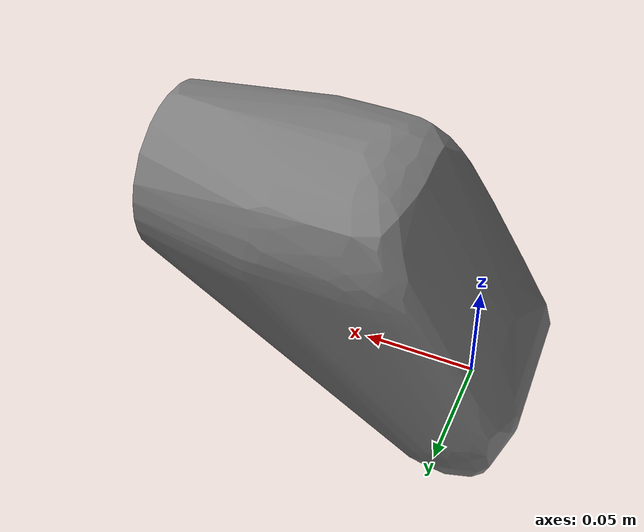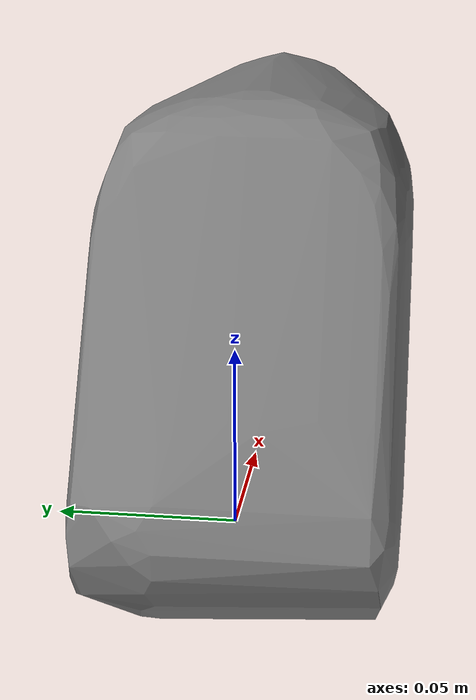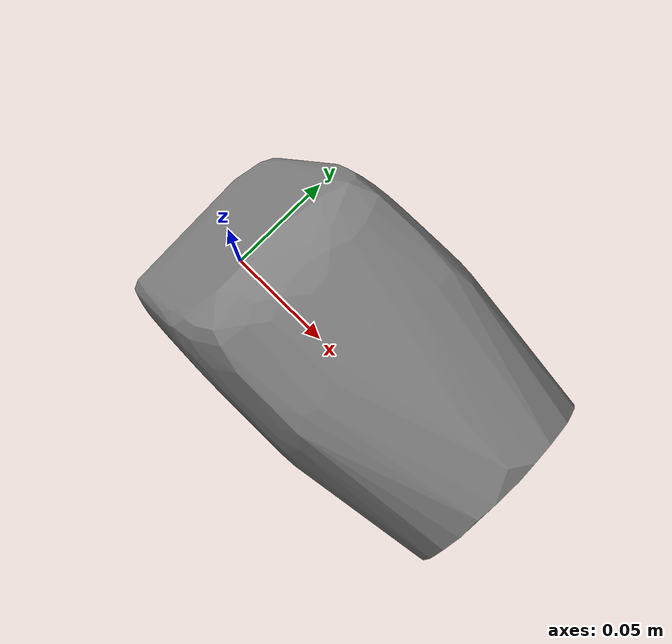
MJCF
<mujoco model="arm_link_el0_coll">
  <default>
    <default class="visual">
      <geom group="2" type="mesh" contype="0" conaffinity="0"/>
    </default>
    <default class="collision">
      <geom group="3" type="mesh"/>
    </default>
  </default>
  <asset>
    <mesh file="arm_link_el0_coll.obj"/>
    <mesh file="arm_link_el0_coll_collision_0.obj"/>
  </asset>
  <worldbody>
    <body name="arm_link_el0_coll">
      <geom mesh="arm_link_el0_coll" class="visual"/>
      <geom mesh="arm_link_el0_coll_collision_0" rgba="0.7222567355278037 0.3747929702359698 0.5686872430537686 1" class="collision"/>
    </body>
  </worldbody>
</mujoco>
